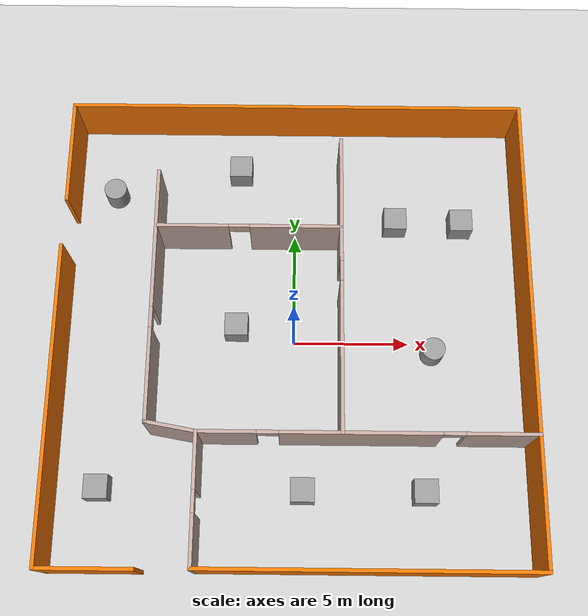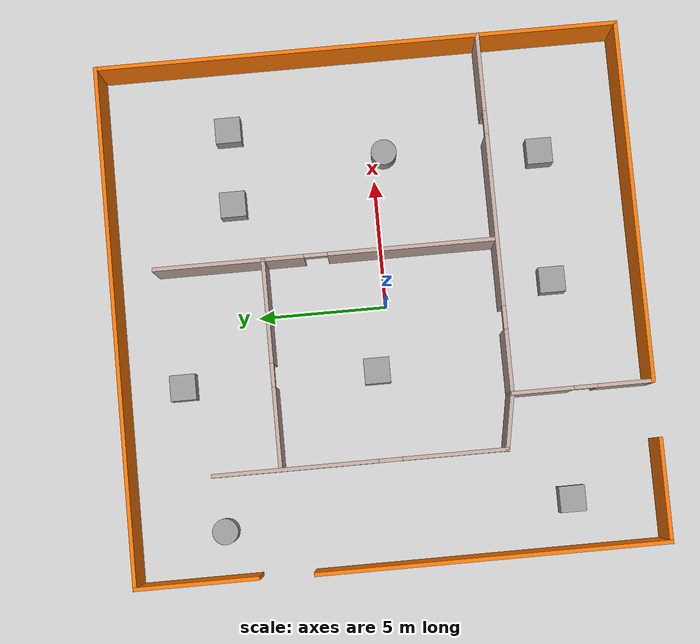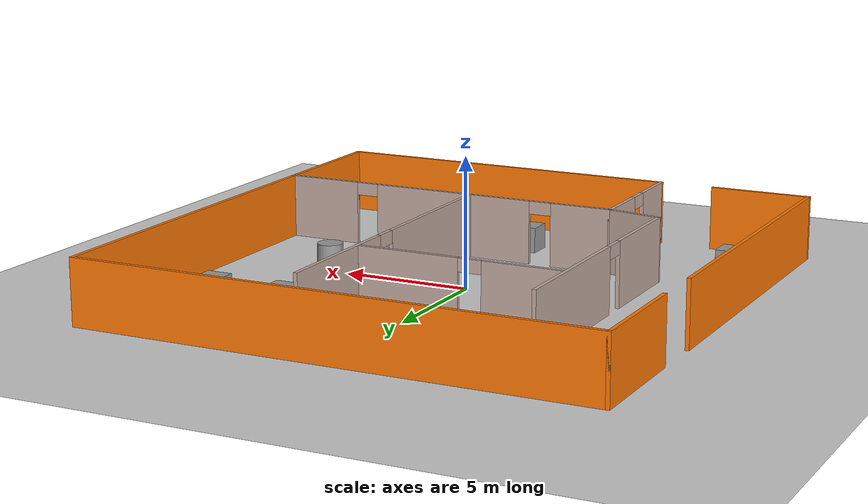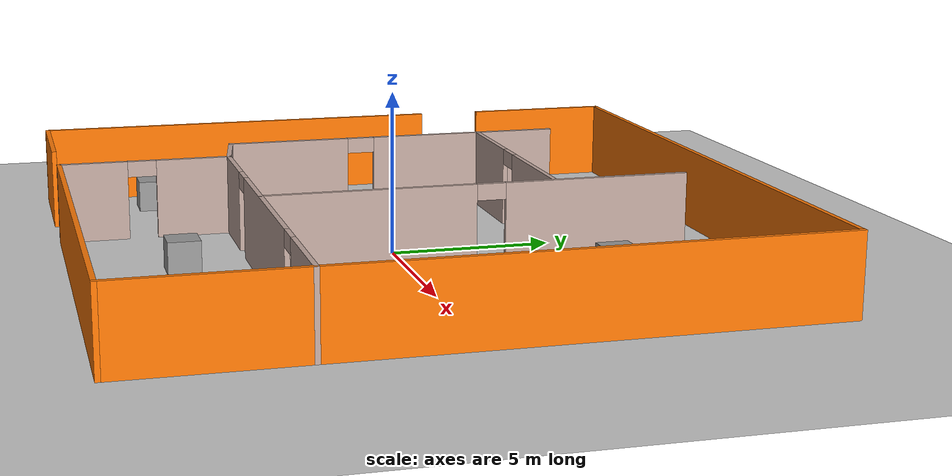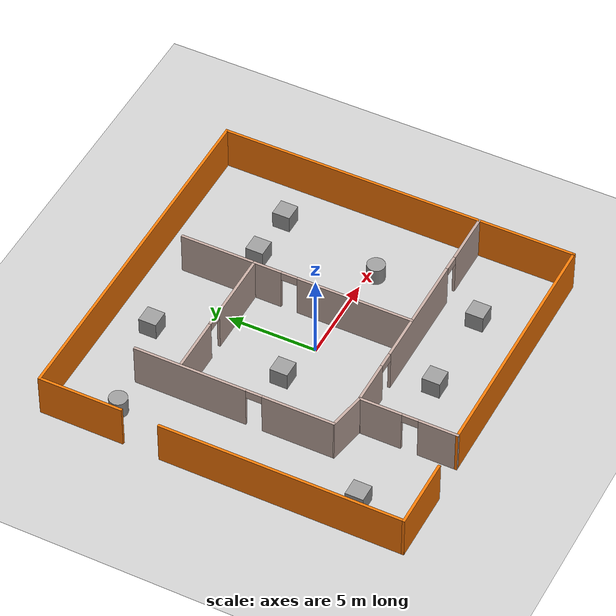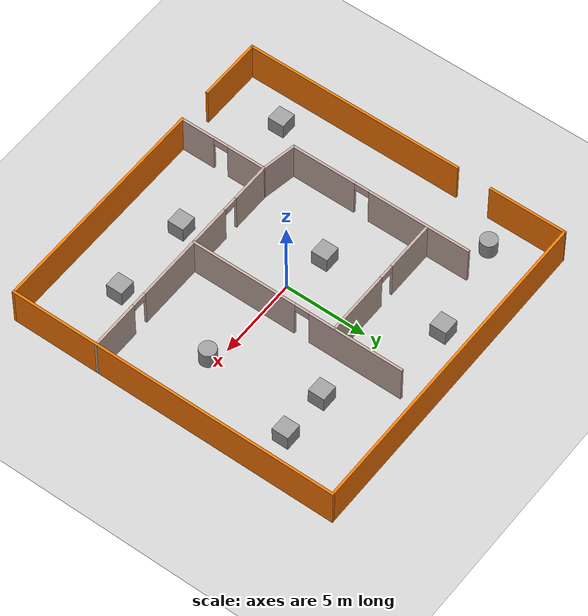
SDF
<sdf version="1.7">
 <world name="default">
  <light name="sun" type="directional">
   <pose>0 0 10 0 -0 0</pose>
   <diffuse>0.8 0.8 0.8 1</diffuse>
   <specular>0.2 0.2 0.2 1</specular>
   <attenuation>
    <range>1000</range>
    <constant>0.9</constant>
    <linear>0.01</linear>
    <quadratic>0.001</quadratic>
   </attenuation>
   <direction>-0.5 0.1 -0.9</direction>
   <spot><inner_angle>0</inner_angle><outer_angle>0</outer_angle><falloff>0</falloff></spot>
  </light>
  <model name="ground_plane">
   <static>1</static>
   <link name="link">
    <collision name="collision">
     <geometry><plane><normal>0 0 1</normal><size>100 100</size></plane></geometry>
     <surface>
      <contact><collide_bitmask>65535</collide_bitmask></contact>
      <friction><ode><mu>100</mu><mu2>50</mu2></ode></friction>
     </surface>
    </collision>
    <visual name="visual">
     <cast_shadows>0</cast_shadows>
     <geometry><plane><normal>0 0 1</normal><size>100 100</size></plane></geometry>
     <material>
      <script><uri>file://media/materials/scripts/gazebo.material</uri><name>Gazebo/Grey</name></script>
     </material>
    </visual>
   </link>
  </model>
  <gravity>0 0 -9.8</gravity>
  <magnetic_field>6e-06 2.3e-05 -4.2e-05</magnetic_field>
  <atmosphere type="adiabatic"/>
  <physics type="ode">
   <max_step_size>0.001</max_step_size>
   <real_time_factor>1</real_time_factor>
   <real_time_update_rate>1000</real_time_update_rate>
  </physics>
  <scene><ambient>0.4 0.4 0.4 1</ambient><background>0.7 0.7 0.7 1</background><shadows>1</shadows></scene>
  <spherical_coordinates>
   <surface_model>EARTH_WGS84</surface_model>
   <latitude_deg>0</latitude_deg>
   <longitude_deg>0</longitude_deg>
   <elevation>0</elevation>
   <heading_deg>0</heading_deg>
  </spherical_coordinates>
  <model name="mod2">
   <pose>-0.0075 0.254293 0 0 -0 0</pose>
   <link name="Wall_10">
    <collision name="Wall_10_Collision">
     <geometry><box><size>20.25 0.15 2.5</size></box></geometry>
     <pose>0 0 1.25 0 -0 0</pose>
    </collision>
    <visual name="Wall_10_Visual">
     <pose>0 0 1.25 0 -0 0</pose>
     <geometry><box><size>20.25 0.15 2.5</size></box></geometry>
     <material>
      <script><uri>file://media/materials/scripts/gazebo.material</uri><name>Gazebo/Grey</name></script>
      <ambient>0.996078 0.47451 0.0196078 1</ambient>
     </material>
     <meta><layer>0</layer></meta>
    </visual>
    <pose>9.95606 0.021298 0 0 -0 -1.5708</pose>
   </link>
   <link name="Wall_11">
    <collision name="Wall_11_Collision">
     <geometry><box><size>14 0.15 2.5</size></box></geometry>
     <pose>0 0 1.25 0 -0 0</pose>
    </collision>
    <visual name="Wall_11_Visual">
     <pose>0 0 1.25 0 -0 0</pose>
     <geometry><box><size>14 0.15 2.5</size></box></geometry>
     <material>
      <script><uri>file://media/materials/scripts/gazebo.material</uri><name>Gazebo/Grey</name></script>
      <ambient>0.996078 0.47451 0.0196078 1</ambient>
     </material>
     <meta><layer>0</layer></meta>
    </visual>
    <pose>3.03106 -10.0287 0 0 -0 3.14159</pose>
   </link>
   <link name="Wall_12">
    <pose>-3.89394 -7.3537 0 0 -0 1.5708</pose>
    <visual name="Wall_12_Visual_0">
     <pose>-1.65432 0 1.25 0 -0 0</pose>
     <geometry><box><size>2.19135 0.15 2.5</size></box></geometry>
     <material>
      <script><uri>file://media/materials/scripts/gazebo.material</uri><name>Gazebo/Grey</name></script>
      <ambient>0.760784 0.662745 0.627451 1</ambient>
     </material>
     <meta><layer>0</layer></meta>
    </visual>
    <collision name="Wall_12_Collision_0">
     <geometry><box><size>2.19135 0.15 2.5</size></box></geometry>
     <pose>-1.65432 0 1.25 0 -0 0</pose>
    </collision>
    <visual name="Wall_12_Visual_1">
     <pose>1.54568 0 1.25 0 -0 0</pose>
     <geometry><box><size>2.40865 0.15 2.5</size></box></geometry>
     <material>
      <script><uri>file://media/materials/scripts/gazebo.material</uri><name>Gazebo/Grey</name></script>
      <ambient>0.760784 0.662745 0.627451 1</ambient>
     </material>
     <meta><layer>0</layer></meta>
    </visual>
    <collision name="Wall_12_Collision_1">
     <geometry><box><size>2.40865 0.15 2.5</size></box></geometry>
     <pose>1.54568 0 1.25 0 -0 0</pose>
    </collision>
    <visual name="Wall_12_Visual_2">
     <pose>-0.108648 0 2.25 0 -0 0</pose>
     <geometry><box><size>0.9 0.15 0.5</size></box></geometry>
     <material>
      <script><uri>file://media/materials/scripts/gazebo.material</uri><name>Gazebo/Grey</name></script>
      <ambient>0.760784 0.662745 0.627451 1</ambient>
     </material>
     <meta><layer>0</layer></meta>
    </visual>
    <collision name="Wall_12_Collision_2">
     <geometry><box><size>0.9 0.15 0.5</size></box></geometry>
     <pose>-0.108648 0 2.25 0 -0 0</pose>
    </collision>
   </link>
   <link name="Wall_13">
    <pose>3.03106 -4.6787 0 0 -0 0</pose>
    <visual name="Wall_13_Visual_0">
     <pose>-5.74447 0 1.25 0 -0 0</pose>
     <geometry><box><size>2.51107 0.15 2.5</size></box></geometry>
     <material>
      <script><uri>file://media/materials/scripts/gazebo.material</uri><name>Gazebo/Grey</name></script>
      <ambient>0.760784 0.662745 0.627451 1</ambient>
     </material>
     <meta><layer>0</layer></meta>
    </visual>
    <collision name="Wall_13_Collision_0">
     <geometry><box><size>2.51107 0.15 2.5</size></box></geometry>
     <pose>-5.74447 0 1.25 0 -0 0</pose>
    </collision>
    <visual name="Wall_13_Visual_1">
     <pose>-0.270495 0 1.25 0 -0 0</pose>
     <geometry><box><size>6.63687 0.15 2.5</size></box></geometry>
     <material>
      <script><uri>file://media/materials/scripts/gazebo.material</uri><name>Gazebo/Grey</name></script>
      <ambient>0.760784 0.662745 0.627451 1</ambient>
     </material>
     <meta><layer>0</layer></meta>
    </visual>
    <collision name="Wall_13_Collision_1">
     <geometry><box><size>6.63687 0.15 2.5</size></box></geometry>
     <pose>-0.270495 0 1.25 0 -0 0</pose>
    </collision>
    <visual name="Wall_13_Visual_2">
     <pose>5.47397 0 1.25 0 -0 0</pose>
     <geometry><box><size>3.05206 0.15 2.5</size></box></geometry>
     <material>
      <script><uri>file://media/materials/scripts/gazebo.material</uri><name>Gazebo/Grey</name></script>
      <ambient>0.760784 0.662745 0.627451 1</ambient>
     </material>
     <meta><layer>0</layer></meta>
    </visual>
    <collision name="Wall_13_Collision_2">
     <geometry><box><size>3.05206 0.15 2.5</size></box></geometry>
     <pose>5.47397 0 1.25 0 -0 0</pose>
    </collision>
    <visual name="Wall_13_Visual_3">
     <pose>-4.03893 0 2.25 0 -0 0</pose>
     <geometry><box><size>0.9 0.15 0.5</size></box></geometry>
     <material>
      <script><uri>file://media/materials/scripts/gazebo.material</uri><name>Gazebo/Grey</name></script>
      <ambient>0.760784 0.662745 0.627451 1</ambient>
     </material>
     <meta><layer>0</layer></meta>
    </visual>
    <collision name="Wall_13_Collision_3">
     <geometry><box><size>0.9 0.15 0.5</size></box></geometry>
     <pose>-4.03893 0 2.25 0 -0 0</pose>
    </collision>
    <visual name="Wall_13_Visual_4">
     <pose>3.49794 0 2.25 0 -0 0</pose>
     <geometry><box><size>0.9 0.15 0.5</size></box></geometry>
     <material>
      <script><uri>file://media/materials/scripts/gazebo.material</uri><name>Gazebo/Grey</name></script>
      <ambient>0.760784 0.662745 0.627451 1</ambient>
     </material>
     <meta><layer>0</layer></meta>
    </visual>
    <collision name="Wall_13_Collision_4">
     <geometry><box><size>0.9 0.15 0.5</size></box></geometry>
     <pose>3.49794 0 2.25 0 -0 0</pose>
    </collision>
   </link>
   <link name="Wall_15">
    <pose>2.01592 1.87908 0 0 -0 1.5708</pose>
    <visual name="Wall_15_Visual_0">
     <pose>-3.34639 0 1.25 0 -0 0</pose>
     <geometry><box><size>6.55722 0.15 2.5</size></box></geometry>
     <material>
      <script><uri>file://media/materials/scripts/gazebo.material</uri><name>Gazebo/Grey</name></script>
      <ambient>0.760784 0.662745 0.627451 1</ambient>
     </material>
     <meta><layer>0</layer></meta>
    </visual>
    <collision name="Wall_15_Collision_0">
     <geometry><box><size>6.55722 0.15 2.5</size></box></geometry>
     <pose>-3.34639 0 1.25 0 -0 0</pose>
    </collision>
    <visual name="Wall_15_Visual_1">
     <pose>3.72861 0 1.25 0 -0 0</pose>
     <geometry><box><size>5.79278 0.15 2.5</size></box></geometry>
     <material>
      <script><uri>file://media/materials/scripts/gazebo.material</uri><name>Gazebo/Grey</name></script>
      <ambient>0.760784 0.662745 0.627451 1</ambient>
     </material>
     <meta><layer>0</layer></meta>
    </visual>
    <collision name="Wall_15_Collision_1">
     <geometry><box><size>5.79278 0.15 2.5</size></box></geometry>
     <pose>3.72861 0 1.25 0 -0 0</pose>
    </collision>
    <visual name="Wall_15_Visual_2">
     <pose>0.382219 0 2.25 0 -0 0</pose>
     <geometry><box><size>0.9 0.15 0.5</size></box></geometry>
     <material>
      <script><uri>file://media/materials/scripts/gazebo.material</uri><name>Gazebo/Grey</name></script>
      <ambient>0.760784 0.662745 0.627451 1</ambient>
     </material>
     <meta><layer>0</layer></meta>
    </visual>
    <collision name="Wall_15_Collision_2">
     <geometry><box><size>0.9 0.15 0.5</size></box></geometry>
     <pose>0.382219 0 2.25 0 -0 0</pose>
    </collision>
   </link>
   <link name="Wall_17">
    <pose>-5.96306 1.27049 0 0 -0 -1.5708</pose>
    <visual name="Wall_17_Visual_0">
     <pose>-2.46278 0 1.25 0 -0 0</pose>
     <geometry><box><size>6.32444 0.15 2.5</size></box></geometry>
     <material>
      <script><uri>file://media/materials/scripts/gazebo.material</uri><name>Gazebo/Grey</name></script>
      <ambient>0.760784 0.662745 0.627451 1</ambient>
     </material>
     <meta><layer>0</layer></meta>
    </visual>
    <collision name="Wall_17_Collision_0">
     <geometry><box><size>6.32444 0.15 2.5</size></box></geometry>
     <pose>-2.46278 0 1.25 0 -0 0</pose>
    </collision>
    <visual name="Wall_17_Visual_1">
     <pose>3.61222 0 1.25 0 -0 0</pose>
     <geometry><box><size>4.02556 0.15 2.5</size></box></geometry>
     <material>
      <script><uri>file://media/materials/scripts/gazebo.material</uri><name>Gazebo/Grey</name></script>
      <ambient>0.760784 0.662745 0.627451 1</ambient>
     </material>
     <meta><layer>0</layer></meta>
    </visual>
    <collision name="Wall_17_Collision_1">
     <geometry><box><size>4.02556 0.15 2.5</size></box></geometry>
     <pose>3.61222 0 1.25 0 -0 0</pose>
    </collision>
    <visual name="Wall_17_Visual_2">
     <pose>1.14944 0 2.25 0 -0 0</pose>
     <geometry><box><size>0.9 0.15 0.5</size></box></geometry>
     <material>
      <script><uri>file://media/materials/scripts/gazebo.material</uri><name>Gazebo/Grey</name></script>
      <ambient>0.760784 0.662745 0.627451 1</ambient>
     </material>
     <meta><layer>0</layer></meta>
    </visual>
    <collision name="Wall_17_Collision_2">
     <geometry><box><size>0.9 0.15 0.5</size></box></geometry>
     <pose>1.14944 0 2.25 0 -0 0</pose>
    </collision>
   </link>
   <link name="Wall_18">
    <collision name="Wall_18_Collision">
     <geometry><box><size>2.25302 0.15 2.5</size></box></geometry>
     <pose>0 0 1.25 0 -0 0</pose>
    </collision>
    <visual name="Wall_18_Visual">
     <pose>0 0 1.25 0 -0 0</pose>
     <geometry><box><size>2.25302 0.15 2.5</size></box></geometry>
     <material>
      <script><uri>file://media/materials/scripts/gazebo.material</uri><name>Gazebo/Grey</name></script>
      <ambient>0.760784 0.662745 0.627451 1</ambient>
     </material>
     <meta><layer>0</layer></meta>
    </visual>
    <pose>-4.9285 -4.49067 0 0 -0 -0.179787</pose>
   </link>
   <link name="Wall_22">
    <pose>-1.94721 4.27395 0 0 -0 3.14159</pose>
    <visual name="Wall_22_Visual_0">
     <pose>-2.00696 0 1.25 0 -0 0</pose>
     <geometry><box><size>3.98609 0.15 2.5</size></box></geometry>
     <material>
      <script><uri>file://media/materials/scripts/gazebo.material</uri><name>Gazebo/Grey</name></script>
      <ambient>0.760784 0.662745 0.627451 1</ambient>
     </material>
     <meta><layer>0</layer></meta>
    </visual>
    <collision name="Wall_22_Collision_0">
     <geometry><box><size>3.98609 0.15 2.5</size></box></geometry>
     <pose>-2.00696 0 1.25 0 -0 0</pose>
    </collision>
    <visual name="Wall_22_Visual_1">
     <pose>2.44305 0 1.25 0 -0 0</pose>
     <geometry><box><size>3.11391 0.15 2.5</size></box></geometry>
     <material>
      <script><uri>file://media/materials/scripts/gazebo.material</uri><name>Gazebo/Grey</name></script>
      <ambient>0.760784 0.662745 0.627451 1</ambient>
     </material>
     <meta><layer>0</layer></meta>
    </visual>
    <collision name="Wall_22_Collision_1">
     <geometry><box><size>3.11391 0.15 2.5</size></box></geometry>
     <pose>2.44305 0 1.25 0 -0 0</pose>
    </collision>
    <visual name="Wall_22_Visual_2">
     <pose>0.436089 0 2.25 0 -0 0</pose>
     <geometry><box><size>0.9 0.15 0.5</size></box></geometry>
     <material>
      <script><uri>file://media/materials/scripts/gazebo.material</uri><name>Gazebo/Grey</name></script>
      <ambient>0.760784 0.662745 0.627451 1</ambient>
     </material>
     <meta><layer>0</layer></meta>
    </visual>
    <collision name="Wall_22_Collision_2">
     <geometry><box><size>0.9 0.15 0.5</size></box></geometry>
     <pose>0.436089 0 2.25 0 -0 0</pose>
    </collision>
   </link>
   <link name="Wall_4">
    <collision name="Wall_4_Collision">
     <geometry><box><size>4 0.15 2.5</size></box></geometry>
     <pose>0 0 1.25 0 -0 0</pose>
    </collision>
    <visual name="Wall_4_Visual">
     <pose>0 0 1.25 0 -0 0</pose>
     <geometry><box><size>4 0.15 2.5</size></box></geometry>
     <material>
      <script><uri>file://media/materials/scripts/gazebo.material</uri><name>Gazebo/Grey</name></script>
      <ambient>0.996078 0.47451 0.0196078 1</ambient>
     </material>
     <meta><layer>0</layer></meta>
    </visual>
    <pose>-8.03106 -10.0713 0 0 -0 0</pose>
   </link>
   <link name="Wall_6">
    <collision name="Wall_6_Collision">
     <geometry><box><size>13.5 0.15 2.5</size></box></geometry>
     <pose>0 0 1.25 0 -0 0</pose>
    </collision>
    <visual name="Wall_6_Visual">
     <pose>0 0 1.25 0 -0 0</pose>
     <geometry><box><size>13.5 0.15 2.5</size></box></geometry>
     <material>
      <script><uri>file://media/materials/scripts/gazebo.material</uri><name>Gazebo/Grey</name></script>
      <ambient>0.996078 0.47451 0.0196078 1</ambient>
     </material>
     <meta><layer>0</layer></meta>
    </visual>
    <pose>-9.95606 -3.3963 0 0 -0 1.5708</pose>
   </link>
   <link name="Wall_8">
    <collision name="Wall_8_Collision">
     <geometry><box><size>4.75 0.15 2.5</size></box></geometry>
     <pose>0 0 1.25 0 -0 0</pose>
    </collision>
    <visual name="Wall_8_Visual">
     <pose>0 0 1.25 0 -0 0</pose>
     <geometry><box><size>4.75 0.15 2.5</size></box></geometry>
     <material>
      <script><uri>file://media/materials/scripts/gazebo.material</uri><name>Gazebo/Grey</name></script>
      <ambient>0.996078 0.47451 0.0196078 1</ambient>
     </material>
     <meta><layer>0</layer></meta>
    </visual>
    <pose>-9.89394 7.7713 0 0 -0 1.5708</pose>
   </link>
   <link name="Wall_9">
    <collision name="Wall_9_Collision">
     <geometry><box><size>20 0.15 2.5</size></box></geometry>
     <pose>0 0 1.25 0 -0 0</pose>
    </collision>
    <visual name="Wall_9_Visual">
     <pose>0 0 1.25 0 -0 0</pose>
     <geometry><box><size>20 0.15 2.5</size></box></geometry>
     <material>
      <script><uri>file://media/materials/scripts/gazebo.material</uri><name>Gazebo/Grey</name></script>
      <ambient>0.996078 0.47451 0.0196078 1</ambient>
     </material>
     <meta><layer>0</layer></meta>
    </visual>
    <pose>0.031062 10.0713 0 0 -0 0</pose>
   </link>
   <static>1</static>
  </model>
  <model name="unit_box">
   <pose>-2.49306 0.576326 0.499995 0 1e-05 0</pose>
   <link name="link">
    <inertial>
     <mass>1</mass>
     <inertia>
      <ixx>0.166667</ixx>
      <ixy>0</ixy>
      <ixz>0</ixz>
      <iyy>0.166667</iyy>
      <iyz>0</iyz>
      <izz>0.166667</izz>
     </inertia>
    </inertial>
    <collision name="collision"><geometry><box><size>1 1 1</size></box></geometry></collision>
    <visual name="visual">
     <geometry><box><size>1 1 1</size></box></geometry>
     <material>
      <script><name>Gazebo/Grey</name><uri>file://media/materials/scripts/gazebo.material</uri></script>
     </material>
    </visual>
   </link>
  </model>
  <model name="unit_box_0">
   <pose>7.41991 5.5552 0.499995 -1e-05 -0 -0</pose>
   <link name="link">
    <inertial>
     <mass>1</mass>
     <inertia>
      <ixx>0.166667</ixx>
      <ixy>0</ixy>
      <ixz>0</ixz>
      <iyy>0.166667</iyy>
      <iyz>0</iyz>
      <izz>0.166667</izz>
     </inertia>
    </inertial>
    <collision name="collision"><geometry><box><size>1 1 1</size></box></geometry></collision>
    <visual name="visual">
     <geometry><box><size>1 1 1</size></box></geometry>
     <material>
      <script><name>Gazebo/Grey</name><uri>file://media/materials/scripts/gazebo.material</uri></script>
     </material>
    </visual>
   </link>
  </model>
  <model name="unit_box_1">
   <pose>4.48241 5.6035 0.499995 0 1e-05 0</pose>
   <link name="link">
    <inertial>
     <mass>1</mass>
     <inertia>
      <ixx>0.166667</ixx>
      <ixy>0</ixy>
      <ixz>0</ixz>
      <iyy>0.166667</iyy>
      <iyz>0</iyz>
      <izz>0.166667</izz>
     </inertia>
    </inertial>
    <collision name="collision"><geometry><box><size>1 1 1</size></box></geometry></collision>
    <visual name="visual">
     <geometry><box><size>1 1 1</size></box></geometry>
     <material>
      <script><name>Gazebo/Grey</name><uri>file://media/materials/scripts/gazebo.material</uri></script>
     </material>
    </visual>
   </link>
  </model>
  <model name="unit_cylinder">
   <pose>6.00538 -0.454883 0.499998 3e-06 -4e-06 0</pose>
   <link name="link">
    <inertial>
     <mass>1</mass>
     <inertia><ixx>0.145833</ixx><ixy>0</ixy><ixz>0</ixz><iyy>0.145833</iyy><iyz>0</iyz><izz>0.125</izz></inertia>
    </inertial>
    <collision name="collision">
     <geometry><cylinder><radius>0.5</radius><length>1</length></cylinder></geometry>
    </collision>
    <visual name="visual">
     <geometry><cylinder><radius>0.5</radius><length>1</length></cylinder></geometry>
     <material>
      <script><name>Gazebo/Grey</name><uri>file://media/materials/scripts/gazebo.material</uri></script>
     </material>
    </visual>
   </link>
  </model>
  <model name="unit_box_2">
   <pose>0.421115 -6.51682 0.499995 0 1e-05 0</pose>
   <link name="link">
    <inertial>
     <mass>1</mass>
     <inertia>
      <ixx>0.166667</ixx>
      <ixy>0</ixy>
      <ixz>0</ixz>
      <iyy>0.166667</iyy>
      <iyz>0</iyz>
      <izz>0.166667</izz>
     </inertia>
    </inertial>
    <collision name="collision"><geometry><box><size>1 1 1</size></box></geometry></collision>
    <visual name="visual">
     <geometry><box><size>1 1 1</size></box></geometry>
     <material>
      <script><name>Gazebo/Grey</name><uri>file://media/materials/scripts/gazebo.material</uri></script>
     </material>
    </visual>
   </link>
  </model>
  <model name="unit_box_3">
   <pose>5.50584 -6.52407 0.499995 -1e-05 -0 -0</pose>
   <link name="link">
    <inertial>
     <mass>1</mass>
     <inertia>
      <ixx>0.166667</ixx>
      <ixy>0</ixy>
      <ixz>0</ixz>
      <iyy>0.166667</iyy>
      <iyz>0</iyz>
      <izz>0.166667</izz>
     </inertia>
    </inertial>
    <collision name="collision"><geometry><box><size>1 1 1</size></box></geometry></collision>
    <visual name="visual">
     <geometry><box><size>1 1 1</size></box></geometry>
     <material>
      <script><name>Gazebo/Grey</name><uri>file://media/materials/scripts/gazebo.material</uri></script>
     </material>
    </visual>
   </link>
  </model>
  <model name="unit_box_4">
   <pose>-8.07761 -6.45871 0.499995 0 1e-05 0</pose>
   <link name="link">
    <inertial>
     <mass>1</mass>
     <inertia>
      <ixx>0.166667</ixx>
      <ixy>0</ixy>
      <ixz>0</ixz>
      <iyy>0.166667</iyy>
      <iyz>0</iyz>
      <izz>0.166667</izz>
     </inertia>
    </inertial>
    <collision name="collision"><geometry><box><size>1 1 1</size></box></geometry></collision>
    <visual name="visual">
     <geometry><box><size>1 1 1</size></box></geometry>
     <material>
      <script><name>Gazebo/Grey</name><uri>file://media/materials/scripts/gazebo.material</uri></script>
     </material>
    </visual>
   </link>
  </model>
  <model name="unit_box_5">
   <pose>-2.46888 8.10983 0.499995 -1e-05 -0 0</pose>
   <link name="link">
    <inertial>
     <mass>1</mass>
     <inertia>
      <ixx>0.166667</ixx>
      <ixy>0</ixy>
      <ixz>0</ixz>
      <iyy>0.166667</iyy>
      <iyz>0</iyz>
      <izz>0.166667</izz>
     </inertia>
    </inertial>
    <collision name="collision"><geometry><box><size>1 1 1</size></box></geometry></collision>
    <visual name="visual">
     <geometry><box><size>1 1 1</size></box></geometry>
     <material>
      <script><name>Gazebo/Grey</name><uri>file://media/materials/scripts/gazebo.material</uri></script>
     </material>
    </visual>
   </link>
  </model>
  <model name="unit_cylinder_0">
   <pose>-8.12425 6.92525 0.499997 3e-06 4e-06 -0</pose>
   <link name="link">
    <inertial>
     <mass>1</mass>
     <inertia><ixx>0.145833</ixx><ixy>0</ixy><ixz>0</ixz><iyy>0.145833</iyy><iyz>0</iyz><izz>0.125</izz></inertia>
    </inertial>
    <collision name="collision">
     <geometry><cylinder><radius>0.5</radius><length>1</length></cylinder></geometry>
    </collision>
    <visual name="visual">
     <geometry><cylinder><radius>0.5</radius><length>1</length></cylinder></geometry>
     <material>
      <script><name>Gazebo/Grey</name><uri>file://media/materials/scripts/gazebo.material</uri></script>
     </material>
    </visual>
   </link>
  </model>
 </world>
</sdf>
